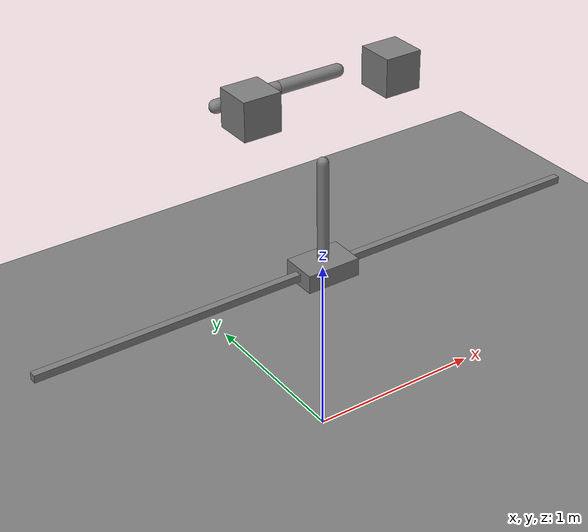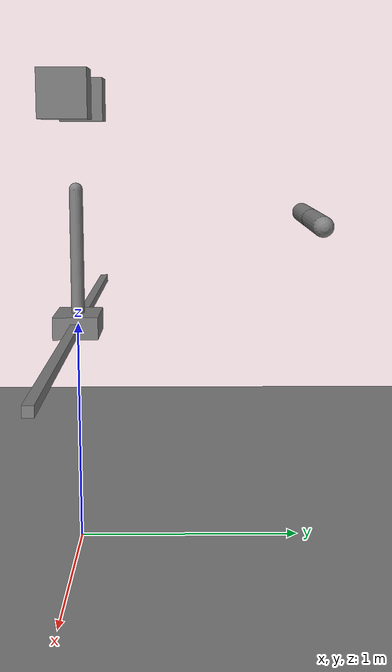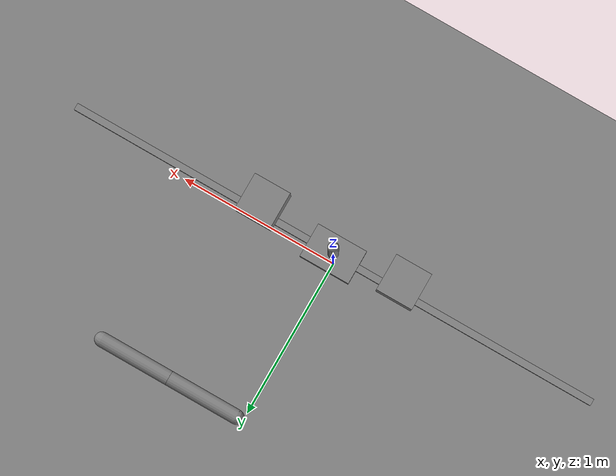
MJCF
<!-- A primitives-only MJCF scene written for the bevy_rapier examples: an actuated cart-pole, a
     damped double pendulum with springs, and a few free bodies. -->
<mujoco model="cart_pole">
  <compiler angle="radian" autolimits="true"/>
  <option gravity="0 0 -9.81"/>

  <default>
    <geom contype="1" conaffinity="1" friction="0.8"/>
  </default>

  <worldbody>
    <geom name="floor" type="plane" size="5 5 0.1"/>
    <geom name="rail" type="box" pos="0 0 1" size="1.6 0.02 0.02" contype="0" conaffinity="0"/>

    <body name="cart" pos="0 0 1">
      <joint name="slider" type="slide" axis="1 0 0" range="-1.5 1.5" damping="1"/>
      <geom name="cart_geom" type="box" size="0.15 0.1 0.05" mass="1"/>
      <body name="pole" pos="0 0 0">
        <joint name="pole_hinge" type="hinge" axis="0 1 0" damping="0.02"/>
        <geom name="pole_geom" type="capsule" fromto="0 0 0 0 0 0.6" size="0.03" mass="0.2"/>
      </body>
    </body>

    <body name="link1" pos="0 1 1.5">
      <joint name="hinge1" type="hinge" axis="0 1 0" damping="0.1" armature="0.01" stiffness="1"/>
      <geom name="link1_geom" type="capsule" fromto="0 0 0 0.4 0 0" size="0.04" mass="0.5"/>
      <body name="link2" pos="0.4 0 0">
        <joint name="hinge2" type="hinge" axis="0 1 0" frictionloss="0.05"/>
        <geom name="link2_geom" type="capsule" fromto="0 0 0 0.4 0 0" size="0.04" mass="0.5"/>
      </body>
    </body>

    <body name="box" pos="-0.4 0 2">
      <freejoint/>
      <geom name="box_geom" type="box" size="0.1 0.1 0.1" mass="0.3"/>
    </body>
    <body name="ghost_box" pos="0.4 0 2">
      <freejoint/>
      <geom name="ghost_box_geom" type="box" size="0.1 0.1 0.1" mass="0.3"/>
    </body>
  </worldbody>

  <contact>
    <!-- The ghost box goes through the cart and the pole. -->
    <exclude body1="ghost_box" body2="cart"/>
    <exclude body1="ghost_box" body2="pole"/>
    <pair geom1="box_geom" geom2="cart_geom" friction="0.1"/>
  </contact>

  <actuator>
    <motor name="cart_motor" joint="slider" gear="10" ctrlrange="-1 1"/>
    <position name="elbow_servo" joint="hinge2" kp="2" kv="0.2"/>
  </actuator>
</mujoco>
